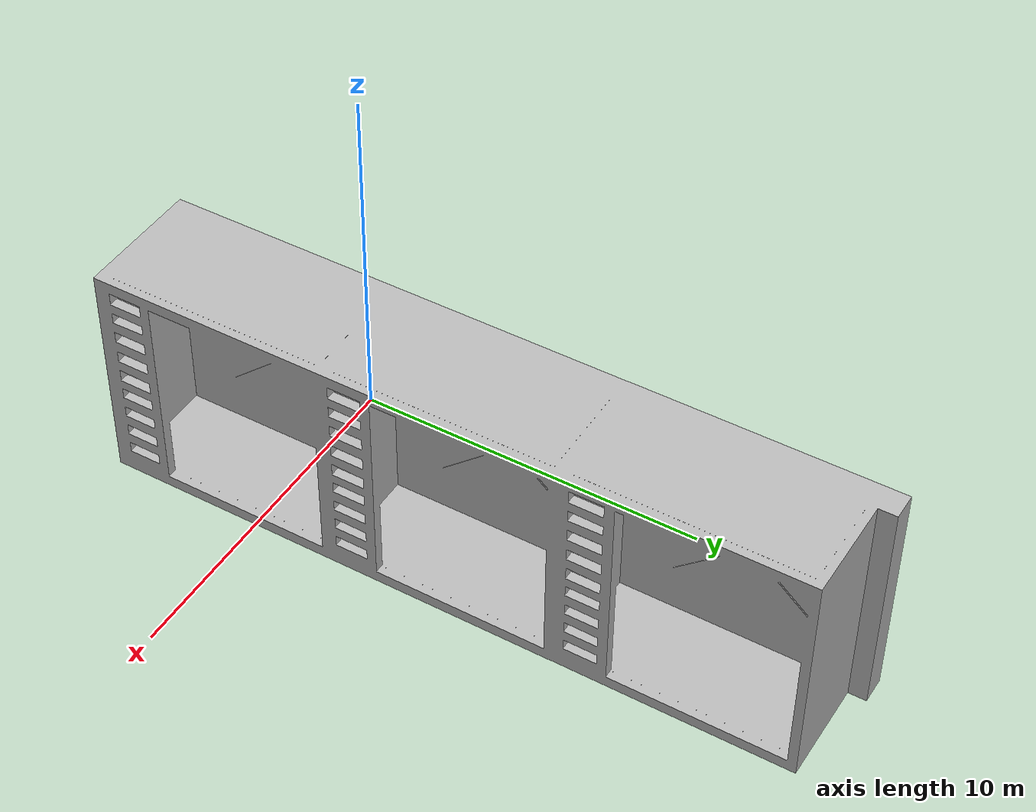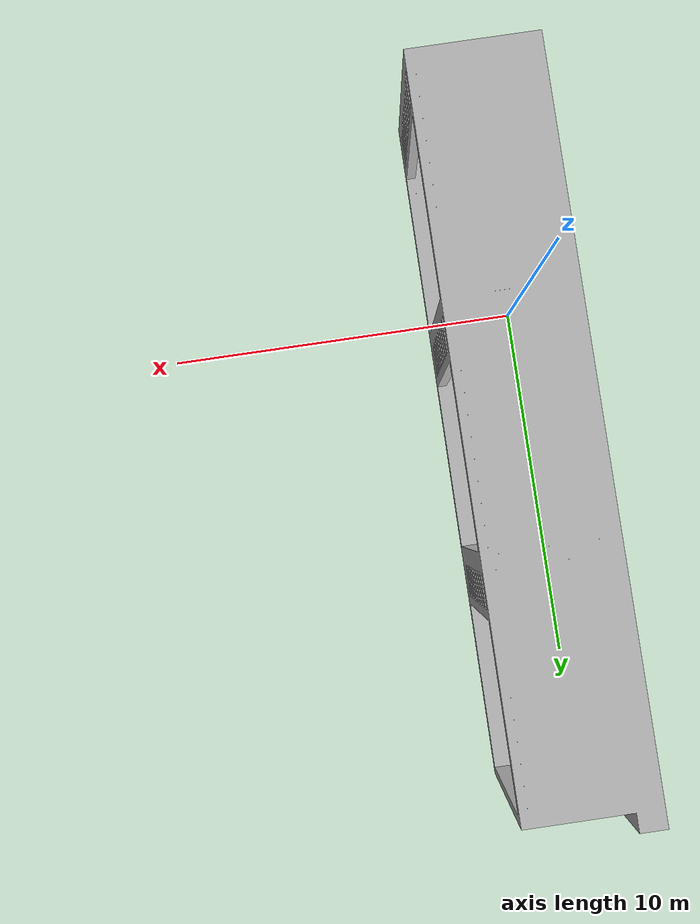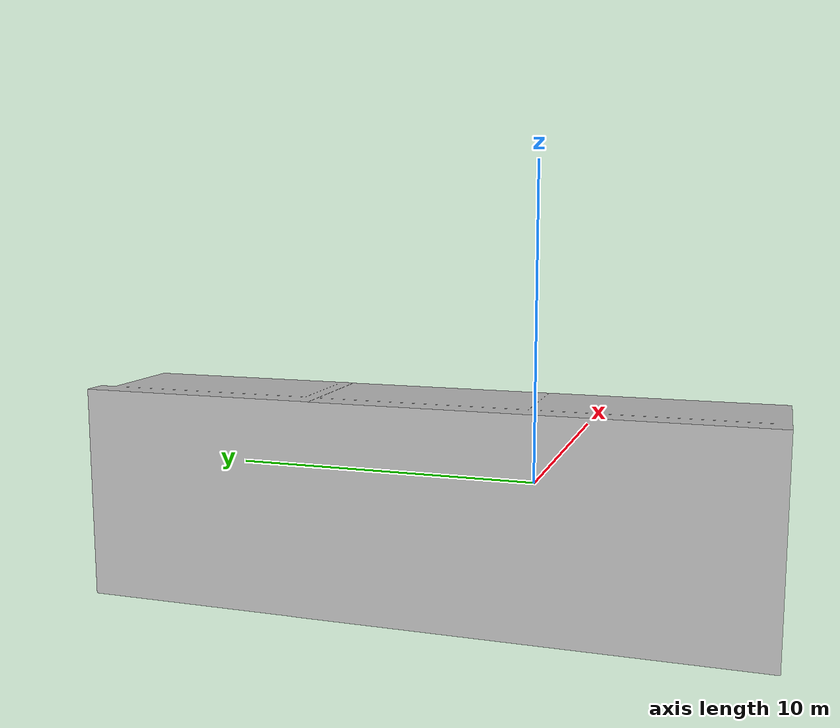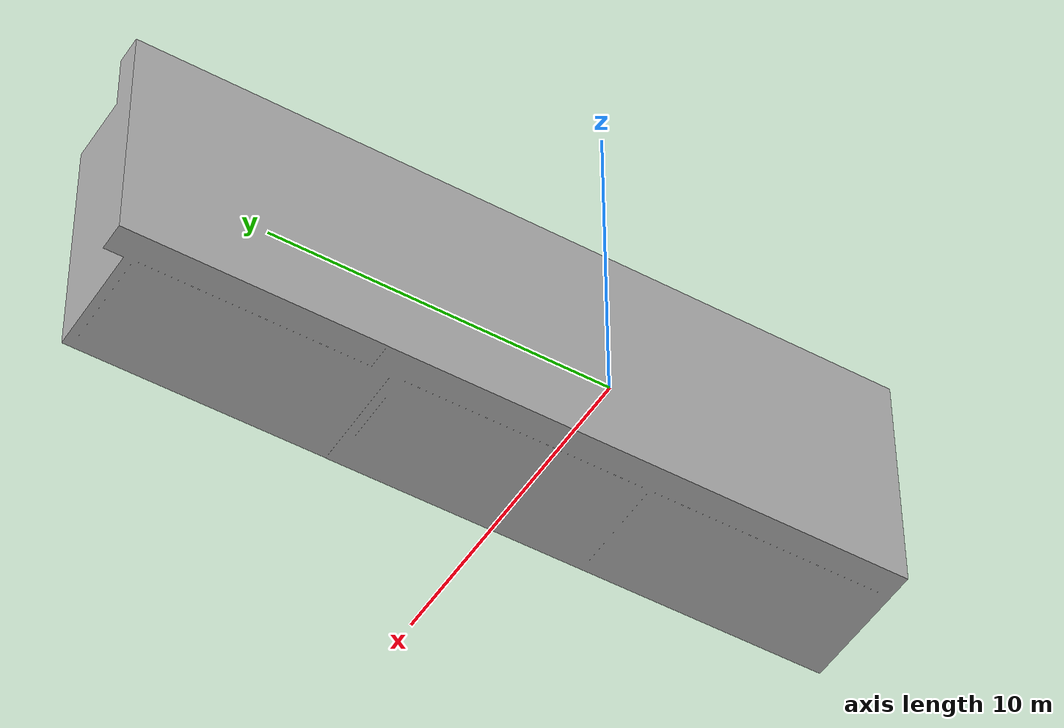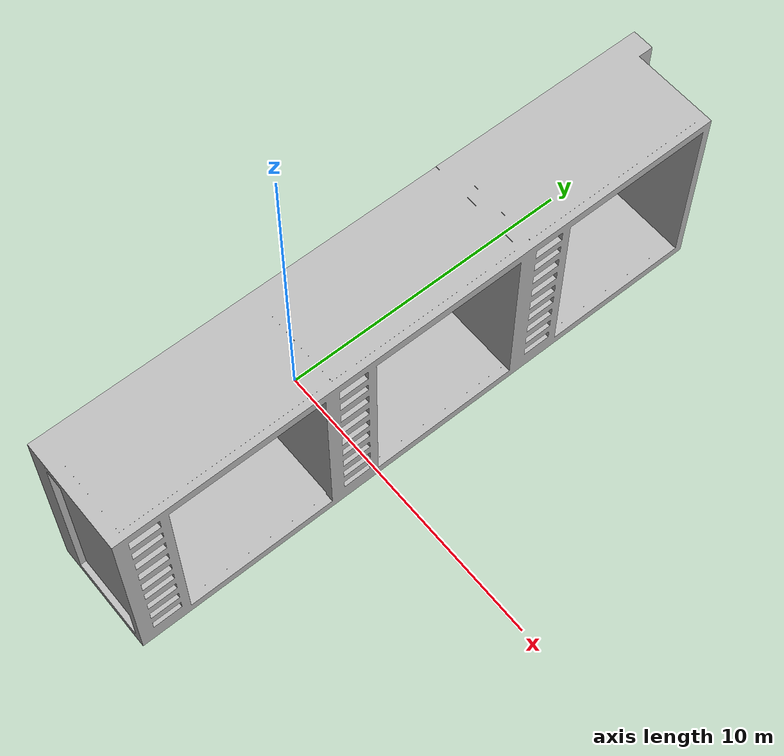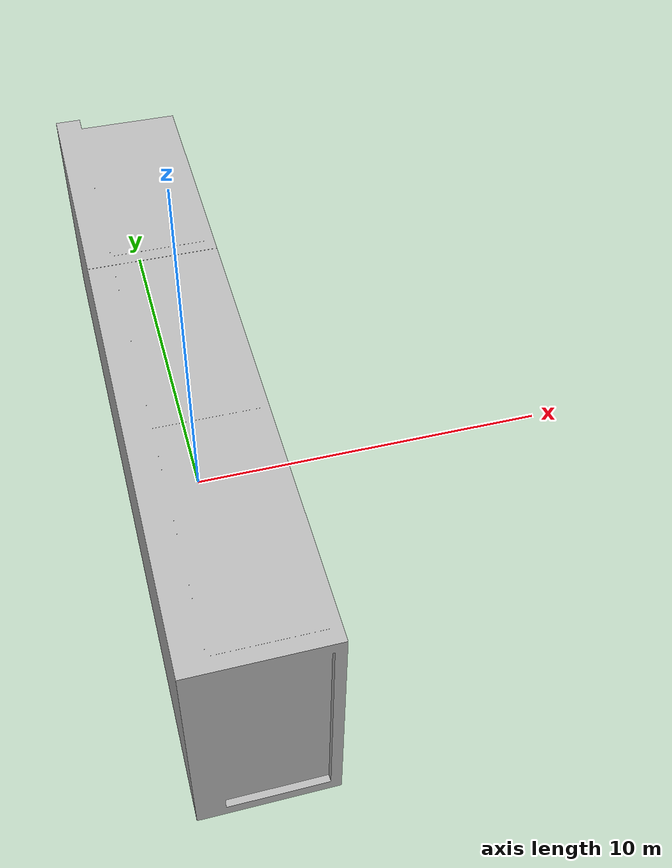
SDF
<?xml version="1.0" ?>
<sdf version="1.6">
  <model name="apartment">
    <static>true</static>
    <link name="apartment_link">
      <visual name="visual">
        <geometry>
          <mesh>
            <uri>model://apartment/meshes/apartment.stl</uri>
            <!-- Or use apartment.stl -->
          </mesh>
        </geometry>
      </visual>

      <!-- Collision -->
      <collision name="collision">
        <geometry>
          <mesh>
            <uri>model://apartment/meshes/apartment.stl</uri>
          </mesh>
        </geometry>
        <surface>
          <contact>
            <ode/>
          </contact>
          <bounce/>
          <friction>
            <ode/>
          </friction>
        </surface>
      </collision>

    </link>
  </model>
</sdf>
